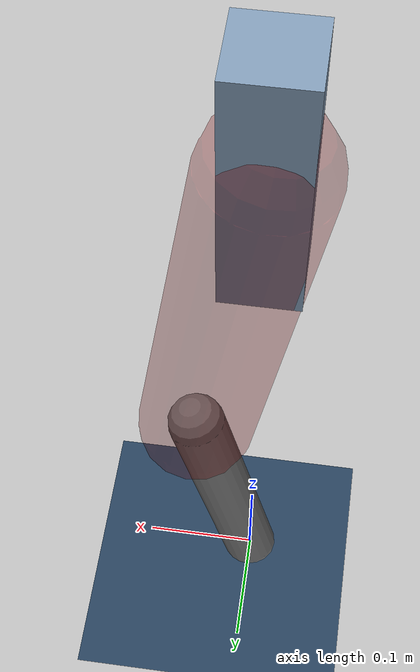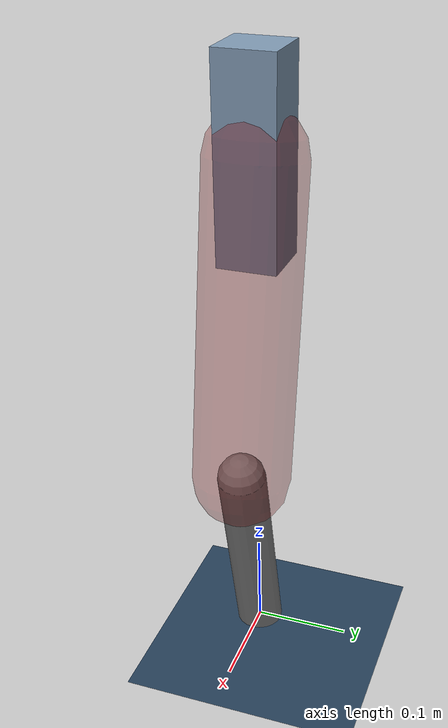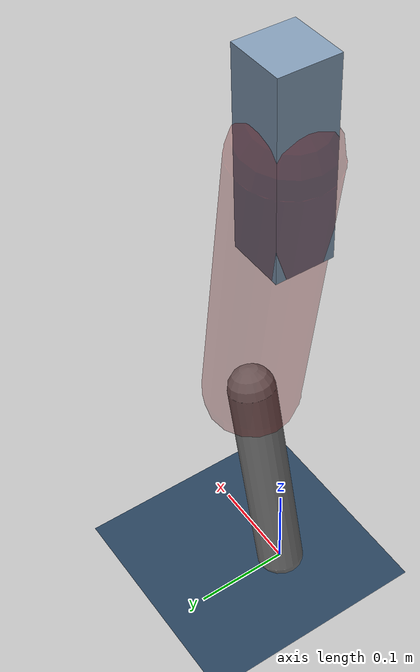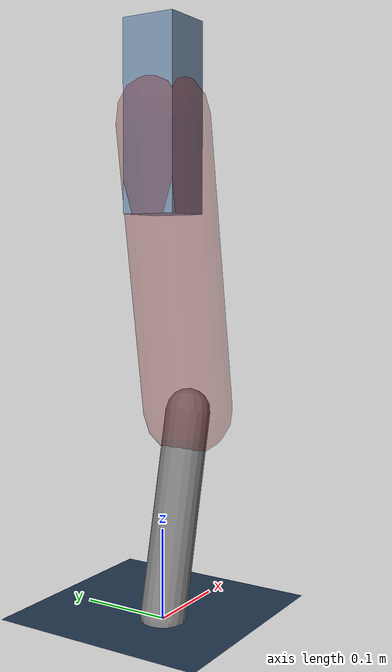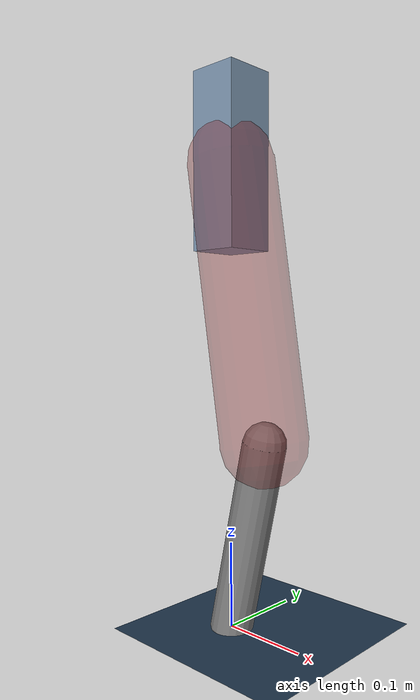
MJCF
<mujoco model="Hopper2D">
	<compiler inertiafromgeom="true" angle="radian" />
	<option timestep="0.001" integrator="implicit" cone="elliptic" solver="Newton" tolerance="1e-10" />

	<default>
		<geom contype="1" conaffinity="1" condim="3" friction="2 0.005 0.0001" solref="0.005 1" />
		<joint limited="true" damping="0.1" />
	</default>

	<asset>
		<texture name="skybox" type="skybox" builtin="gradient" rgb1=".4 .6 .8" rgb2="0 0 0" width="800" height="800" />
		<texture name="grid" type="2d" builtin="checker" rgb1=".1 .2 .3" rgb2=".2 .3 .4" width="300" height="300" mark="edge" markrgb=".2 .3 .4" />
		<material name="ground" texture="grid" texrepeat="1 1" texuniform="true" reflectance="0.1" />
		<material name="leg" rgba="0.5 0.6 0.7 1" />
	</asset>

	<worldbody>

		<geom name="floor" type="plane" size="5 5 0.25" material="ground" />

		<light directional="false" diffuse="0.8 0.8 0.8" specular="0.3 0.3 0.3" pos="0 0 2" dir="0 0 -1" />
		<light mode="targetbodycom" target="base" directional="false" diffuse="0.8 0.8 0.8" specular="0.3 0.3 0.3" pos="0 0 2" dir="0 0 -1" />

		<camera name="fixed" pos="0 -2 1" xyaxes="1 0 0 0 0 1" />
		<camera name="tracking" mode="trackcom" pos="0 -3 1" />

		<body name="root" pos="0 0 0.5393000276052606">
			<joint name="slide_x" type="slide" axis="1 0 0" range="-100 100" />
			<joint name="slide_z" type="slide" axis="0 0 1" range="0 10" />

			<body name="base" pos="0 0 0">
				<geom name="torso" type="box" size="0.03 0.03 0.1" mass="2.102" material="leg" />

				<body name="link1" pos="0 0 0" euler="0 1.40950013753035 0">
					<joint type="hinge" axis="0 -1 0" pos="0 0 0" name="hinge1" limited="true" range="-3.14 3.14" stiffness="0" damping="0.1" />
					<geom name="thigh" type="capsule" fromto="0 0 0 0.32017380040479954 0 0" size="0.05" rgba="0.5 0 0 0.3" mass="1.0436866411334387" />

					<body name="link2" pos="0.32017380040479954 0 0" euler="0 0.38763804599635554 0">
						<joint type="hinge" axis="0 -1 0" pos="0 0 0" name="hinge2" limited="true" range="-3.14 3.14" stiffness="0" damping="0.1" />
						<geom name="shank" type="capsule" fromto="0 0 0 0.22912622720046105 0 0" size="0.025" mass="0.42530098176036885" />

					</body>
				</body>
			</body>
		</body>
	</worldbody>

	<actuator>
		<motor name="torque1" joint="hinge1" ctrlrange="-39.58863915858809 39.58863915858809" ctrllimited="true" gear="1" />
		<motor name="torque2" joint="hinge2" ctrlrange="-91.48170534803795 91.48170534803795" ctrllimited="true" gear="1" />
	</actuator>
</mujoco>
